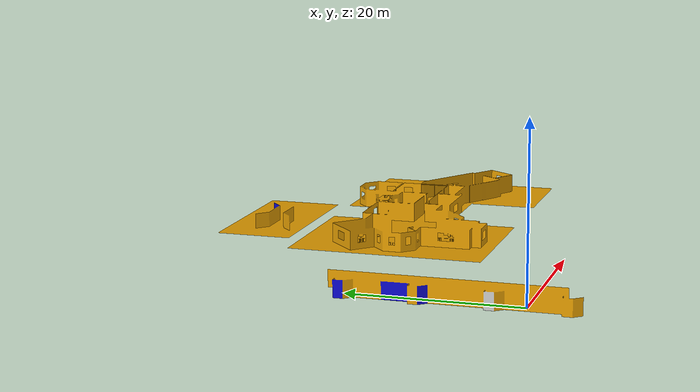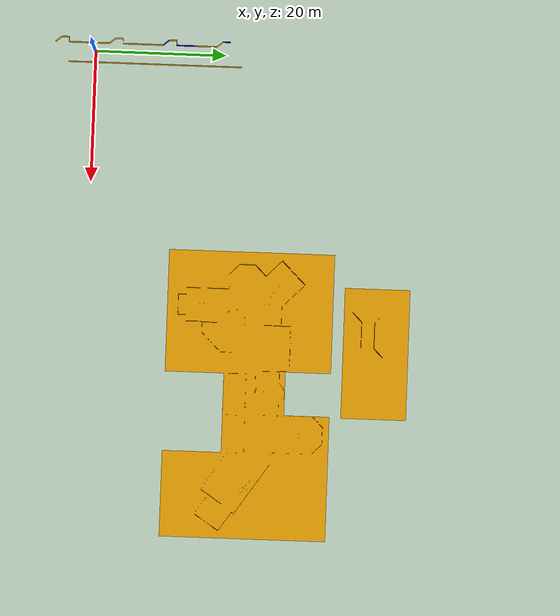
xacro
<?xml version="1.0"?>
<robot name="gleason_world" xmlns:xacro="http://www.ros.org/wiki/xacro">
  <link name="gleason_world_link">
    <inertial>
      <origin xyz="0 0 0" rpy="0 0 0"/>
      <mass value="1"/>
      <inertia ixx="1" ixy="0" ixz="0" iyy="1" iyz="0" izz="1"/>
    </inertial>
    <visual>
      <origin xyz="0 0 0" rpy="0 0 0"/>
      <geometry>
        <mesh filename="package://cpr_gleason_gazebo/meshes/test.dae"/>
      </geometry>
    </visual>
    <collision>
      <origin xyz="0 0 0" rpy="0 0 0"/>
      <geometry>
        <mesh filename="package://cpr_gleason_gazebo/meshes/test.dae"/>
      </geometry>
      <surface>
        <friction>
          <ode>
            <mu>100</mu>
            <mu2>50</mu2>
          </ode>
        </friction>
      </surface>
    </collision>
  </link>
  <gazebo> <static>true</static></gazebo>
</robot>
